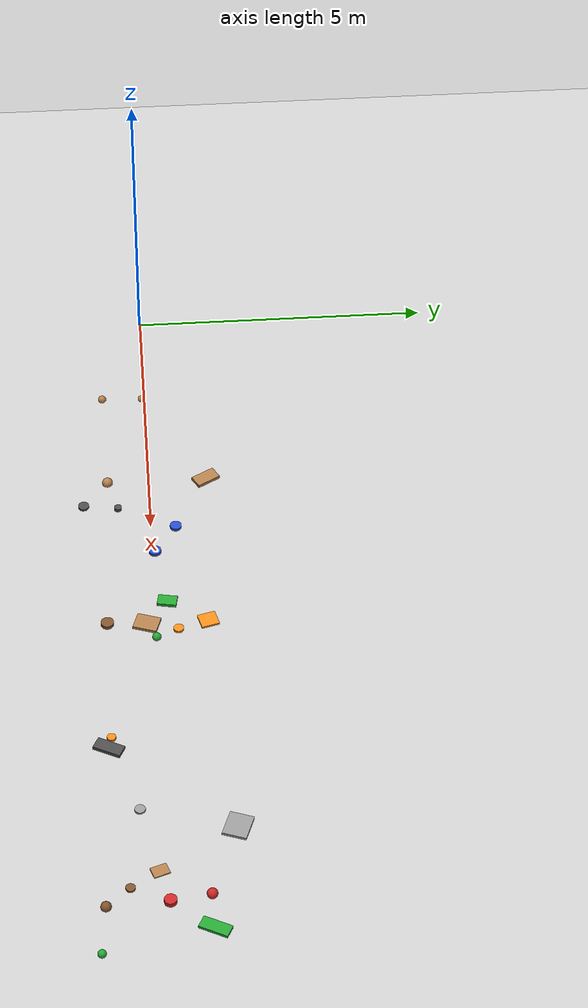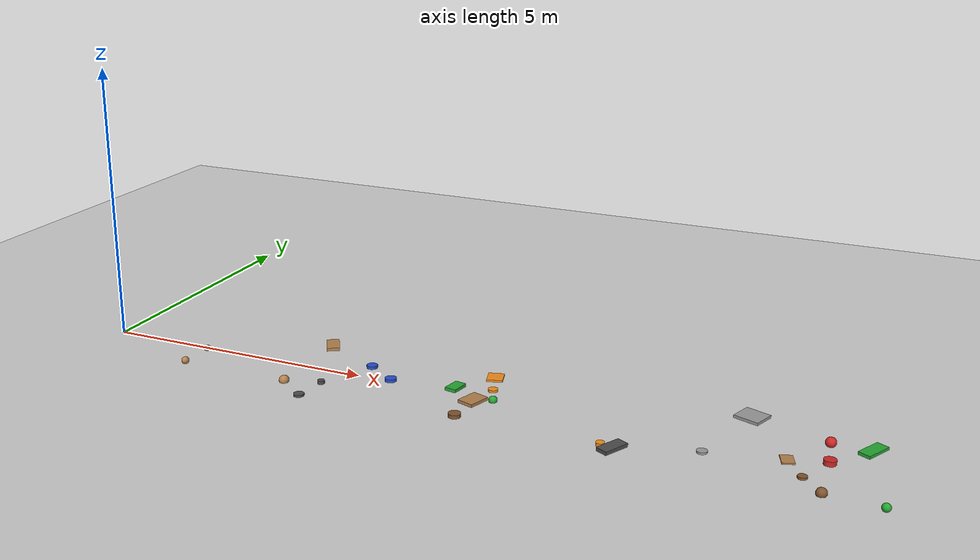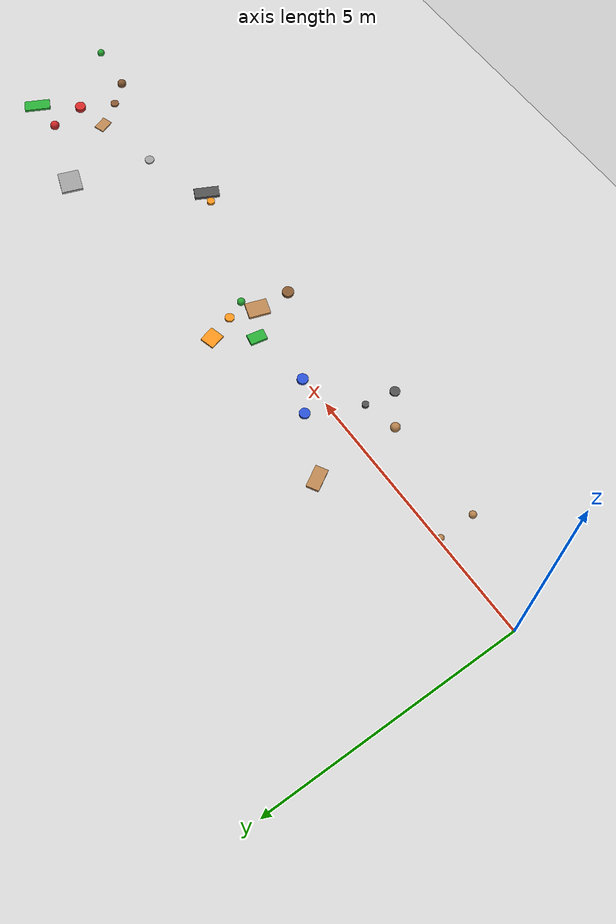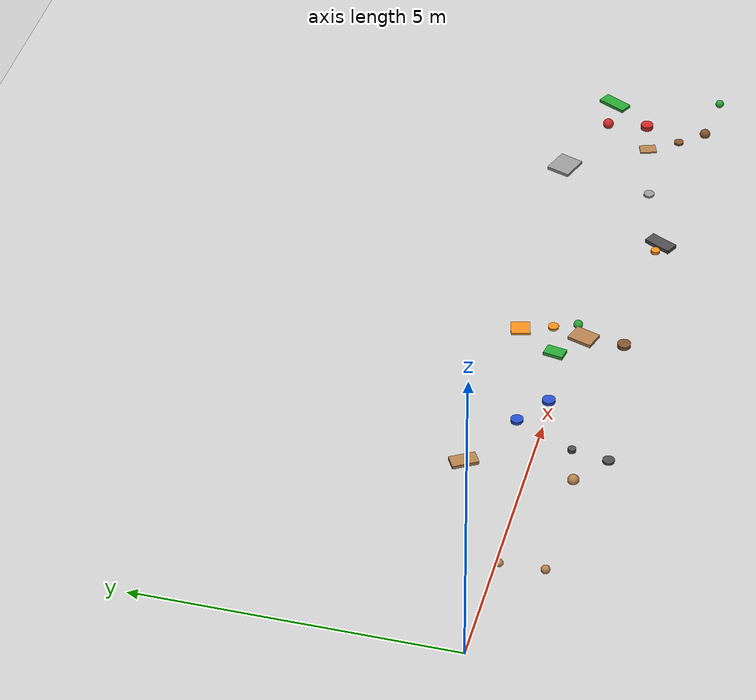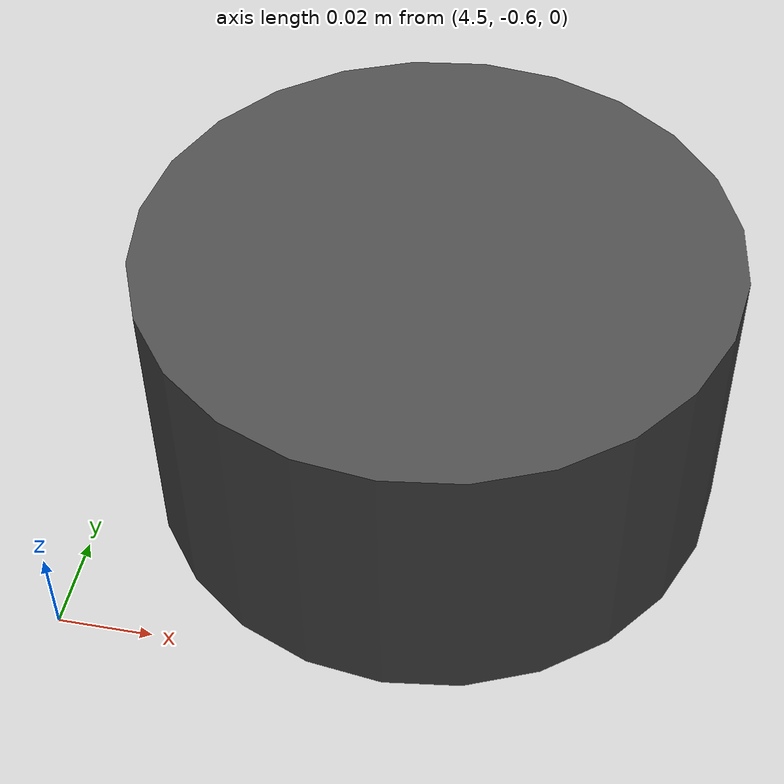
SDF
<?xml version="1.0" ?>
<!-- 由 omni_world.py 自动生成: scene=random seed=10 -->
<sdf version="1.5">
  <world name="random">
    <physics type="ode">
      <type>world</type>
      <max_step_size>0.001</max_step_size>
      <real_time_update_rate>1000</real_time_update_rate>
      <iters>500</iters>
    </physics>
    <include><uri>model://sun</uri></include>
    <include><uri>model://ground_plane</uri></include>
    <model name="r_sph_0">
      <static>true</static>
      <pose>1.907 -0.042 0.011 0 0 0</pose>
      <link name="link">
        <collision name="collision">
          <geometry><sphere><radius>0.063</radius></sphere></geometry>
          <surface><friction><ode><mu>1.0</mu><mu2>1.0</mu2></ode></friction></surface>
        </collision>
        <visual name="visual">
          <geometry><sphere><radius>0.063</radius></sphere></geometry>
          <material><script><uri>file://media/materials/scripts/gazebo.material</uri>
            <name>Gazebo/Wood</name></script></material>
        </visual>
      </link>
    </model>
    <model name="r_cyl_1">
      <static>true</static>
      <pose>9.668 -0.815 0.028 0 0 0</pose>
      <link name="link">
        <collision name="collision">
          <geometry><cylinder><radius>0.073</radius><length>0.056</length></cylinder></geometry>
          <surface><friction><ode><mu>1.0</mu><mu2>1.0</mu2></ode></friction></surface>
        </collision>
        <visual name="visual">
          <geometry><cylinder><radius>0.073</radius><length>0.056</length></cylinder></geometry>
          <material><script><uri>file://media/materials/scripts/gazebo.material</uri>
            <name>Gazebo/Orange</name></script></material>
        </visual>
      </link>
    </model>
    <model name="r_sph_2">
      <static>true</static>
      <pose>13.957 -1.093 0.040 0 0 0</pose>
      <link name="link">
        <collision name="collision">
          <geometry><sphere><radius>0.070</radius></sphere></geometry>
          <surface><friction><ode><mu>1.0</mu><mu2>1.0</mu2></ode></friction></surface>
        </collision>
        <visual name="visual">
          <geometry><sphere><radius>0.070</radius></sphere></geometry>
          <material><script><uri>file://media/materials/scripts/gazebo.material</uri>
            <name>Gazebo/Green</name></script></material>
        </visual>
      </link>
    </model>
    <model name="r_cyl_3">
      <static>true</static>
      <pose>5.045 0.420 0.026 0 0 0</pose>
      <link name="link">
        <collision name="collision">
          <geometry><cylinder><radius>0.098</radius><length>0.052</length></cylinder></geometry>
          <surface><friction><ode><mu>1.0</mu><mu2>1.0</mu2></ode></friction></surface>
        </collision>
        <visual name="visual">
          <geometry><cylinder><radius>0.098</radius><length>0.052</length></cylinder></geometry>
          <material><script><uri>file://media/materials/scripts/gazebo.material</uri>
            <name>Gazebo/Blue</name></script></material>
        </visual>
      </link>
    </model>
    <model name="r_box_4">
      <static>true</static>
      <pose>7.212 0.864 0.018 0.0000 0.0000 1.8313</pose>
      <link name="link">
        <collision name="collision">
          <geometry><box><size>0.304 0.281 0.037</size></box></geometry>
          <surface><friction><ode><mu>1.0</mu><mu2>1.0</mu2></ode></friction></surface>
        </collision>
        <visual name="visual">
          <geometry><box><size>0.304 0.281 0.037</size></box></geometry>
          <material><script><uri>file://media/materials/scripts/gazebo.material</uri>
            <name>Gazebo/Orange</name></script></material>
        </visual>
      </link>
    </model>
    <model name="r_box_5">
      <static>true</static>
      <pose>3.937 0.983 0.029 0.0000 0.0000 2.0945</pose>
      <link name="link">
        <collision name="collision">
          <geometry><box><size>0.420 0.234 0.058</size></box></geometry>
          <surface><friction><ode><mu>1.0</mu><mu2>1.0</mu2></ode></friction></surface>
        </collision>
        <visual name="visual">
          <geometry><box><size>0.420 0.234 0.058</size></box></geometry>
          <material><script><uri>file://media/materials/scripts/gazebo.material</uri>
            <name>Gazebo/Wood</name></script></material>
        </visual>
      </link>
    </model>
    <model name="r_cyl_6">
      <static>true</static>
      <pose>7.375 0.367 0.021 0 0 0</pose>
      <link name="link">
        <collision name="collision">
          <geometry><cylinder><radius>0.085</radius><length>0.043</length></cylinder></geometry>
          <surface><friction><ode><mu>1.0</mu><mu2>1.0</mu2></ode></friction></surface>
        </collision>
        <visual name="visual">
          <geometry><cylinder><radius>0.085</radius><length>0.043</length></cylinder></geometry>
          <material><script><uri>file://media/materials/scripts/gazebo.material</uri>
            <name>Gazebo/Orange</name></script></material>
        </visual>
      </link>
    </model>
    <model name="r_cyl_7">
      <static>true</static>
      <pose>4.480 -1.124 0.021 0 0 0</pose>
      <link name="link">
        <collision name="collision">
          <geometry><cylinder><radius>0.092</radius><length>0.041</length></cylinder></geometry>
          <surface><friction><ode><mu>1.0</mu><mu2>1.0</mu2></ode></friction></surface>
        </collision>
        <visual name="visual">
          <geometry><cylinder><radius>0.092</radius><length>0.041</length></cylinder></geometry>
          <material><script><uri>file://media/materials/scripts/gazebo.material</uri>
            <name>Gazebo/DarkGrey</name></script></material>
        </visual>
      </link>
    </model>
    <model name="r_sph_8">
      <static>true</static>
      <pose>13.053 -1.006 0.023 0 0 0</pose>
      <link name="link">
        <collision name="collision">
          <geometry><sphere><radius>0.087</radius></sphere></geometry>
          <surface><friction><ode><mu>1.0</mu><mu2>1.0</mu2></ode></friction></surface>
        </collision>
        <visual name="visual">
          <geometry><sphere><radius>0.087</radius></sphere></geometry>
          <material><script><uri>file://media/materials/scripts/gazebo.material</uri>
            <name>Gazebo/Brown</name></script></material>
        </visual>
      </link>
    </model>
    <model name="r_box_9">
      <static>true</static>
      <pose>13.547 0.656 0.025 0.0000 0.0000 1.0954</pose>
      <link name="link">
        <collision name="collision">
          <geometry><box><size>0.494 0.217 0.051</size></box></geometry>
          <surface><friction><ode><mu>1.0</mu><mu2>1.0</mu2></ode></friction></surface>
        </collision>
        <visual name="visual">
          <geometry><box><size>0.494 0.217 0.051</size></box></geometry>
          <material><script><uri>file://media/materials/scripts/gazebo.material</uri>
            <name>Gazebo/Green</name></script></material>
        </visual>
      </link>
    </model>
    <model name="r_cyl_10">
      <static>true</static>
      <pose>4.569 -0.541 0.032 0 0 0</pose>
      <link name="link">
        <collision name="collision">
          <geometry><cylinder><radius>0.062</radius><length>0.063</length></cylinder></geometry>
          <surface><friction><ode><mu>1.0</mu><mu2>1.0</mu2></ode></friction></surface>
        </collision>
        <visual name="visual">
          <geometry><cylinder><radius>0.062</radius><length>0.063</length></cylinder></geometry>
          <material><script><uri>file://media/materials/scripts/gazebo.material</uri>
            <name>Gazebo/DarkGrey</name></script></material>
        </visual>
      </link>
    </model>
    <model name="r_cyl_11">
      <static>true</static>
      <pose>7.197 -0.804 0.033 0 0 0</pose>
      <link name="link">
        <collision name="collision">
          <geometry><cylinder><radius>0.107</radius><length>0.065</length></cylinder></geometry>
          <surface><friction><ode><mu>1.0</mu><mu2>1.0</mu2></ode></friction></surface>
        </collision>
        <visual name="visual">
          <geometry><cylinder><radius>0.107</radius><length>0.065</length></cylinder></geometry>
          <material><script><uri>file://media/materials/scripts/gazebo.material</uri>
            <name>Gazebo/Brown</name></script></material>
        </visual>
      </link>
    </model>
    <model name="r_cyl_12">
      <static>true</static>
      <pose>11.161 -0.413 0.018 0 0 0</pose>
      <link name="link">
        <collision name="collision">
          <geometry><cylinder><radius>0.088</radius><length>0.036</length></cylinder></geometry>
          <surface><friction><ode><mu>1.0</mu><mu2>1.0</mu2></ode></friction></surface>
        </collision>
        <visual name="visual">
          <geometry><cylinder><radius>0.088</radius><length>0.036</length></cylinder></geometry>
          <material><script><uri>file://media/materials/scripts/gazebo.material</uri>
            <name>Gazebo/Grey</name></script></material>
        </visual>
      </link>
    </model>
    <model name="r_cyl_13">
      <static>true</static>
      <pose>12.712 -0.618 0.019 0 0 0</pose>
      <link name="link">
        <collision name="collision">
          <geometry><cylinder><radius>0.078</radius><length>0.038</length></cylinder></geometry>
          <surface><friction><ode><mu>1.0</mu><mu2>1.0</mu2></ode></friction></surface>
        </collision>
        <visual name="visual">
          <geometry><cylinder><radius>0.078</radius><length>0.038</length></cylinder></geometry>
          <material><script><uri>file://media/materials/scripts/gazebo.material</uri>
            <name>Gazebo/Brown</name></script></material>
        </visual>
      </link>
    </model>
    <model name="r_cyl_14">
      <static>true</static>
      <pose>13.008 -0.010 0.041 0 0 0</pose>
      <link name="link">
        <collision name="collision">
          <geometry><cylinder><radius>0.102</radius><length>0.083</length></cylinder></geometry>
          <surface><friction><ode><mu>1.0</mu><mu2>1.0</mu2></ode></friction></surface>
        </collision>
        <visual name="visual">
          <geometry><cylinder><radius>0.102</radius><length>0.083</length></cylinder></geometry>
          <material><script><uri>file://media/materials/scripts/gazebo.material</uri>
            <name>Gazebo/Red</name></script></material>
        </visual>
      </link>
    </model>
    <model name="r_sph_15">
      <static>true</static>
      <pose>7.532 -0.000 0.016 0 0 0</pose>
      <link name="link">
        <collision name="collision">
          <geometry><sphere><radius>0.074</radius></sphere></geometry>
          <surface><friction><ode><mu>1.0</mu><mu2>1.0</mu2></ode></friction></surface>
        </collision>
        <visual name="visual">
          <geometry><sphere><radius>0.074</radius></sphere></geometry>
          <material><script><uri>file://media/materials/scripts/gazebo.material</uri>
            <name>Gazebo/Green</name></script></material>
        </visual>
      </link>
    </model>
    <model name="r_box_16">
      <static>true</static>
      <pose>6.755 0.204 0.029 0.0000 0.0000 1.3865</pose>
      <link name="link">
        <collision name="collision">
          <geometry><box><size>0.321 0.208 0.058</size></box></geometry>
          <surface><friction><ode><mu>1.0</mu><mu2>1.0</mu2></ode></friction></surface>
        </collision>
        <visual name="visual">
          <geometry><box><size>0.321 0.208 0.058</size></box></geometry>
          <material><script><uri>file://media/materials/scripts/gazebo.material</uri>
            <name>Gazebo/Green</name></script></material>
        </visual>
      </link>
    </model>
    <model name="r_box_17">
      <static>true</static>
      <pose>12.400 -0.147 0.012 0.0000 0.0000 1.9108</pose>
      <link name="link">
        <collision name="collision">
          <geometry><box><size>0.272 0.203 0.025</size></box></geometry>
          <surface><friction><ode><mu>1.0</mu><mu2>1.0</mu2></ode></friction></surface>
        </collision>
        <visual name="visual">
          <geometry><box><size>0.272 0.203 0.025</size></box></geometry>
          <material><script><uri>file://media/materials/scripts/gazebo.material</uri>
            <name>Gazebo/Wood</name></script></material>
        </visual>
      </link>
    </model>
    <model name="r_box_18">
      <static>true</static>
      <pose>7.233 -0.152 0.028 0.0000 0.0000 2.8210</pose>
      <link name="link">
        <collision name="collision">
          <geometry><box><size>0.306 0.404 0.055</size></box></geometry>
          <surface><friction><ode><mu>1.0</mu><mu2>1.0</mu2></ode></friction></surface>
        </collision>
        <visual name="visual">
          <geometry><box><size>0.306 0.404 0.055</size></box></geometry>
          <material><script><uri>file://media/materials/scripts/gazebo.material</uri>
            <name>Gazebo/Wood</name></script></material>
        </visual>
      </link>
    </model>
    <model name="r_cyl_19">
      <static>true</static>
      <pose>5.605 0.047 0.028 0 0 0</pose>
      <link name="link">
        <collision name="collision">
          <geometry><cylinder><radius>0.102</radius><length>0.057</length></cylinder></geometry>
          <surface><friction><ode><mu>1.0</mu><mu2>1.0</mu2></ode></friction></surface>
        </collision>
        <visual name="visual">
          <geometry><cylinder><radius>0.102</radius><length>0.057</length></cylinder></geometry>
          <material><script><uri>file://media/materials/scripts/gazebo.material</uri>
            <name>Gazebo/Blue</name></script></material>
        </visual>
      </link>
    </model>
    <model name="r_sph_20">
      <static>true</static>
      <pose>1.911 -0.731 0.042 0 0 0</pose>
      <link name="link">
        <collision name="collision">
          <geometry><sphere><radius>0.069</radius></sphere></geometry>
          <surface><friction><ode><mu>1.0</mu><mu2>1.0</mu2></ode></friction></surface>
        </collision>
        <visual name="visual">
          <geometry><sphere><radius>0.069</radius></sphere></geometry>
          <material><script><uri>file://media/materials/scripts/gazebo.material</uri>
            <name>Gazebo/Wood</name></script></material>
        </visual>
      </link>
    </model>
    <model name="r_box_21">
      <static>true</static>
      <pose>11.595 1.110 0.025 0.0000 0.0000 2.7919</pose>
      <link name="link">
        <collision name="collision">
          <geometry><box><size>0.451 0.401 0.050</size></box></geometry>
          <surface><friction><ode><mu>1.0</mu><mu2>1.0</mu2></ode></friction></surface>
        </collision>
        <visual name="visual">
          <geometry><box><size>0.451 0.401 0.050</size></box></geometry>
          <material><script><uri>file://media/materials/scripts/gazebo.material</uri>
            <name>Gazebo/Grey</name></script></material>
        </visual>
      </link>
    </model>
    <model name="r_sph_22">
      <static>true</static>
      <pose>12.914 0.640 0.044 0 0 0</pose>
      <link name="link">
        <collision name="collision">
          <geometry><sphere><radius>0.089</radius></sphere></geometry>
          <surface><friction><ode><mu>1.0</mu><mu2>1.0</mu2></ode></friction></surface>
        </collision>
        <visual name="visual">
          <geometry><sphere><radius>0.089</radius></sphere></geometry>
          <material><script><uri>file://media/materials/scripts/gazebo.material</uri>
            <name>Gazebo/Red</name></script></material>
        </visual>
      </link>
    </model>
    <model name="r_box_23">
      <static>true</static>
      <pose>9.875 -0.861 0.031 0.0000 0.0000 1.0991</pose>
      <link name="link">
        <collision name="collision">
          <geometry><box><size>0.472 0.217 0.062</size></box></geometry>
          <surface><friction><ode><mu>1.0</mu><mu2>1.0</mu2></ode></friction></surface>
        </collision>
        <visual name="visual">
          <geometry><box><size>0.472 0.217 0.062</size></box></geometry>
          <material><script><uri>file://media/materials/scripts/gazebo.material</uri>
            <name>Gazebo/DarkGrey</name></script></material>
        </visual>
      </link>
    </model>
    <model name="r_sph_24">
      <static>true</static>
      <pose>3.933 -0.702 0.013 0 0 0</pose>
      <link name="link">
        <collision name="collision">
          <geometry><sphere><radius>0.090</radius></sphere></geometry>
          <surface><friction><ode><mu>1.0</mu><mu2>1.0</mu2></ode></friction></surface>
        </collision>
        <visual name="visual">
          <geometry><sphere><radius>0.090</radius></sphere></geometry>
          <material><script><uri>file://media/materials/scripts/gazebo.material</uri>
            <name>Gazebo/Wood</name></script></material>
        </visual>
      </link>
    </model>

  </world>
</sdf>
